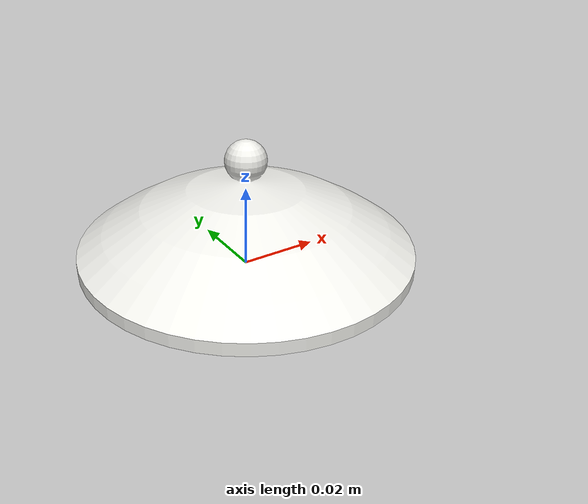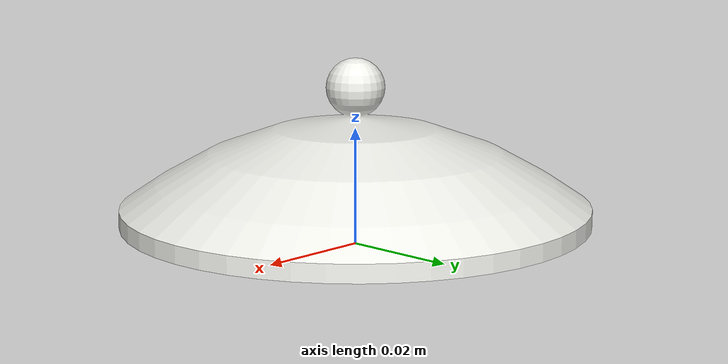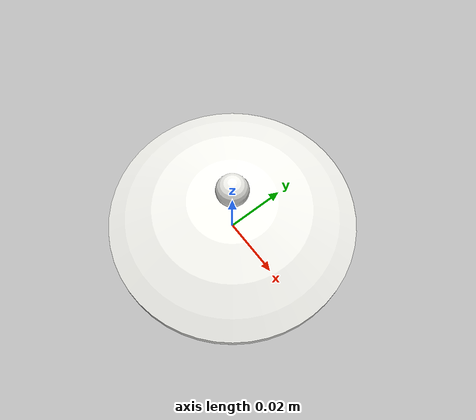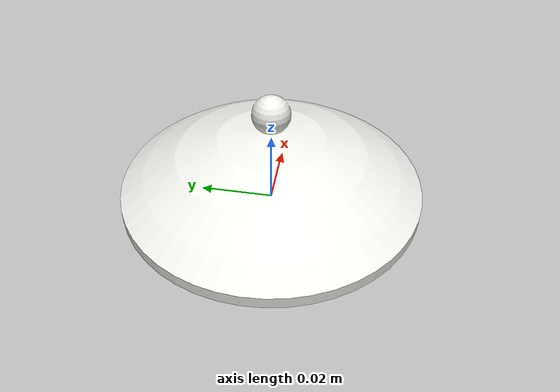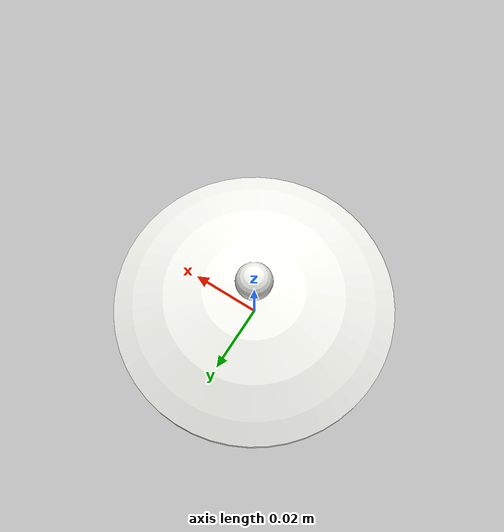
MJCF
<mujoco model="Teapot_Lid">
  <default>
    <default class="visual">
      <geom group="2" type="mesh" contype="0" conaffinity="0"/>
    </default>
    <default class="collision">
      <geom group="3" type="mesh"/>
    </default>
  </default>
  <asset>
    <material name="Porcelain_White" specular="0.5" shininess="0.672400024" rgba="0.940000 0.940000 0.920000 1.000000"/>
    <mesh file="Teapot_Lid.obj"/>
    <mesh file="Teapot_Lid_collision_0.obj"/>
    <mesh file="Teapot_Lid_collision_1.obj"/>
    <mesh file="Teapot_Lid_collision_2.obj"/>
  </asset>
  <worldbody>
    <body name="Teapot_Lid">
      <geom material="Porcelain_White" mesh="Teapot_Lid" class="visual"/>
      <geom mesh="Teapot_Lid_collision_0" rgba="0.47324504940807666 0.7949504398802424 0.6658667447411837 1" class="collision"/>
      <geom mesh="Teapot_Lid_collision_1" rgba="0.175011365114363 0.3060524749399848 0.21421948339633257 1" class="collision"/>
      <geom mesh="Teapot_Lid_collision_2" rgba="0.41041420603082157 0.049845126144497764 0.7055787726451451 1" class="collision"/>
    </body>
  </worldbody>
</mujoco>
